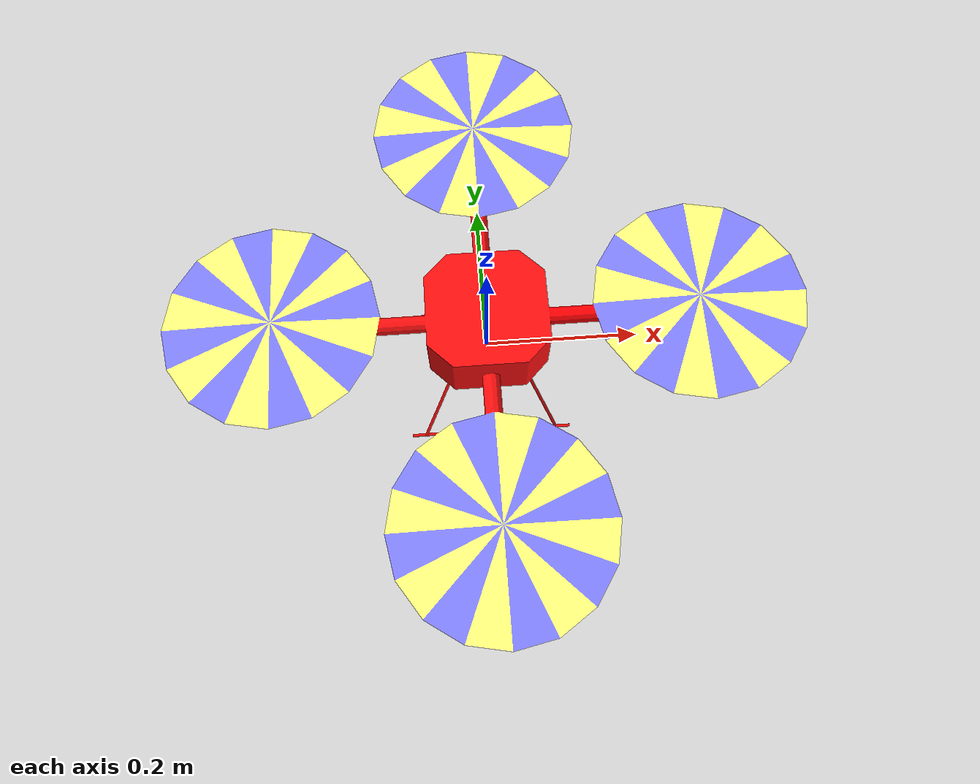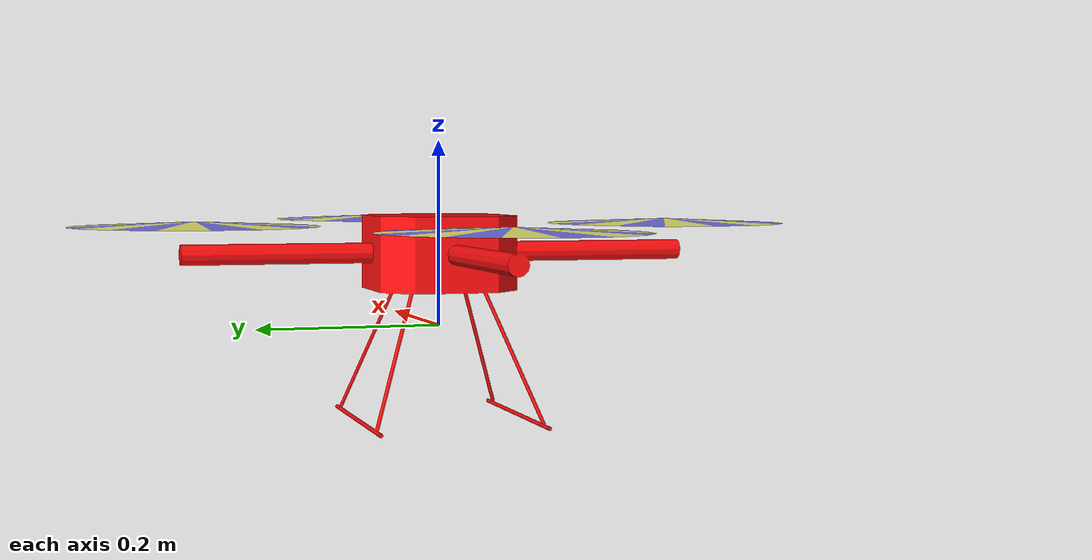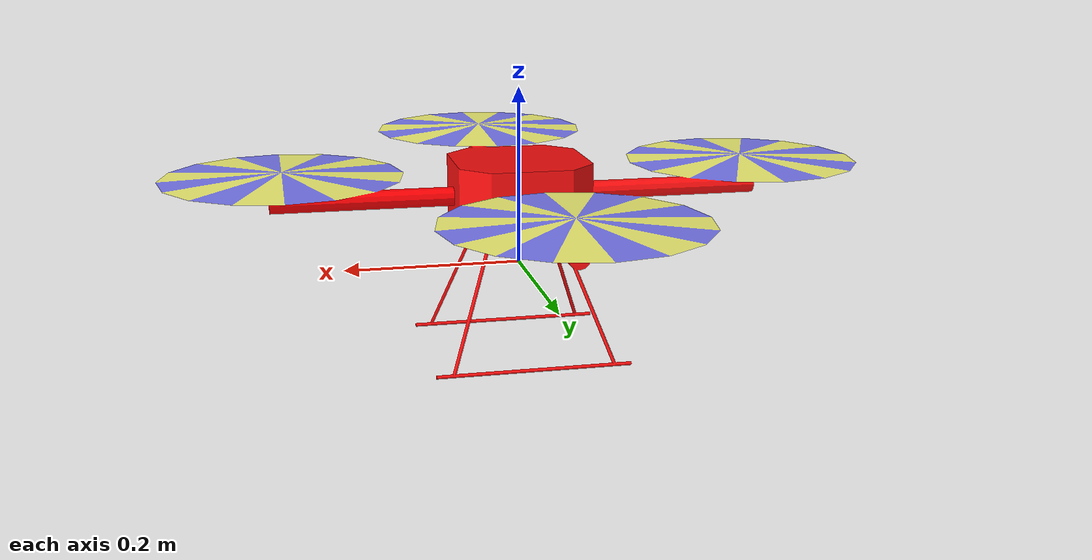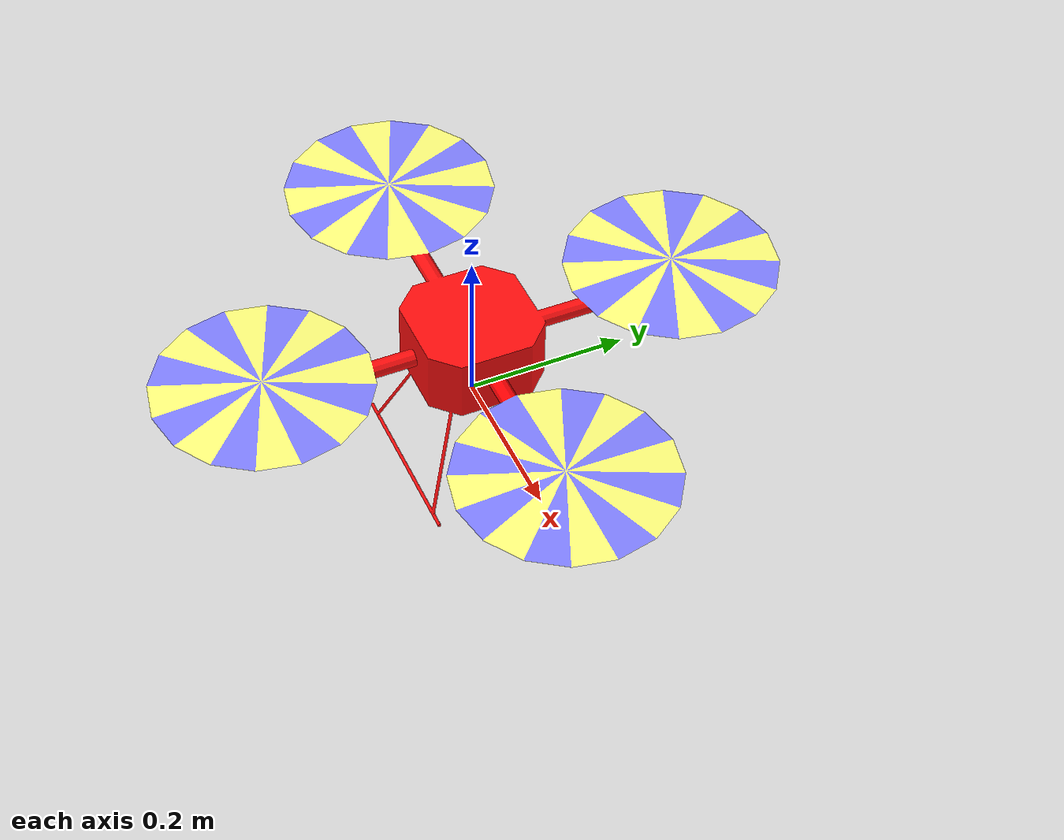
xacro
<?xml version="1.0"?>
<robot name="m100_barebones" xmlns:xacro="http://www.ros.org/wiki/xacro">
  <xacro:arg name="robot_namespace" default="/" />

  <link name="base_footprint"/>

  <joint name="base_joint" type="fixed">
    <origin xyz="0 0 0" rpy="0 0 0"/>
    <parent link="base_footprint"/>
    <child link="base_link"/>
  </joint>

  <link name="base_link">
    <inertial>
      <mass value="2.35" />
      <origin xyz="0 0 0" rpy="0 0 0" />
      <inertia ixx="0.039" ixy="0.0" ixz="0.0" iyy="0.039" iyz="0.0" izz="0.062" />
    </inertial>
    <collision>
      <origin xyz="0 0 0" rpy="0 0 0" />
      <geometry>
        <box size="0.4 0.4 0.2"/>
      </geometry>
    </collision>
    <visual>
      <origin xyz="0 0 0.08" rpy="0 0 0" />
      <geometry>
        <mesh filename="package://hector_quadrotor_description/meshes/quadrotor/quadrotor_base.dae"/>
      </geometry>
    </visual>
  </link>

  <gazebo>
    <plugin name="hector_quadrotor_simple_controller" filename="libhector_gazebo_quadrotor_simple_controller.so">
      <robotNamespace>$(arg robot_namespace)</robotNamespace>
      <alwaysOn>true</alwaysOn>
      <updateRate>100.0</updateRate>
      <bodyName>base_link</bodyName>
      <base_link_frame>base_link</base_link_frame>
      <topicName>cmd_vel</topicName>
      <stateTopic>ground_truth/state</stateTopic>
      <imuTopic>raw_imu</imuTopic>
      <rollpitchProportionalGain>100.0</rollpitchProportionalGain>
      <rollpitchDifferentialGain>10.0</rollpitchDifferentialGain>
      <rollpitchLimit>0.5</rollpitchLimit>
      <yawProportionalGain>10.0</yawProportionalGain>
      <yawDifferentialGain>2.0</yawDifferentialGain>
      <yawLimit>1.5</yawLimit>
      <velocityXYProportionalGain>25.0</velocityXYProportionalGain>
      <velocityXYDifferentialGain>2.5</velocityXYDifferentialGain>
      <velocityXYLimit>10.0</velocityXYLimit>
      <velocityZProportionalGain>10.0</velocityZProportionalGain>
      <velocityZDifferentialGain>0.0</velocityZDifferentialGain>
      <velocityZLimit>3.0</velocityZLimit>
      <maxForce>60.0</maxForce>
    </plugin>
  </gazebo>

  <gazebo>
    <plugin name="quadrotor_state_sim" filename="libgazebo_ros_p3d.so">
      <robotNamespace>$(arg robot_namespace)</robotNamespace>
      <alwaysOn>true</alwaysOn>
      <updateRate>100.0</updateRate>
      <bodyName>base_link</bodyName>
      <topicName>ground_truth/state</topicName>
      <frameName>world</frameName>
    </plugin>
  </gazebo>

  <gazebo>
    <plugin name="quadrotor_imu_sim" filename="libhector_gazebo_ros_imu.so">
      <robotNamespace>$(arg robot_namespace)</robotNamespace>
      <alwaysOn>true</alwaysOn>
      <updateRate>100.0</updateRate>
      <bodyName>base_link</bodyName>
      <frameId>base_link</frameId>
      <topicName>raw_imu</topicName>
    </plugin>
  </gazebo>

</robot>
